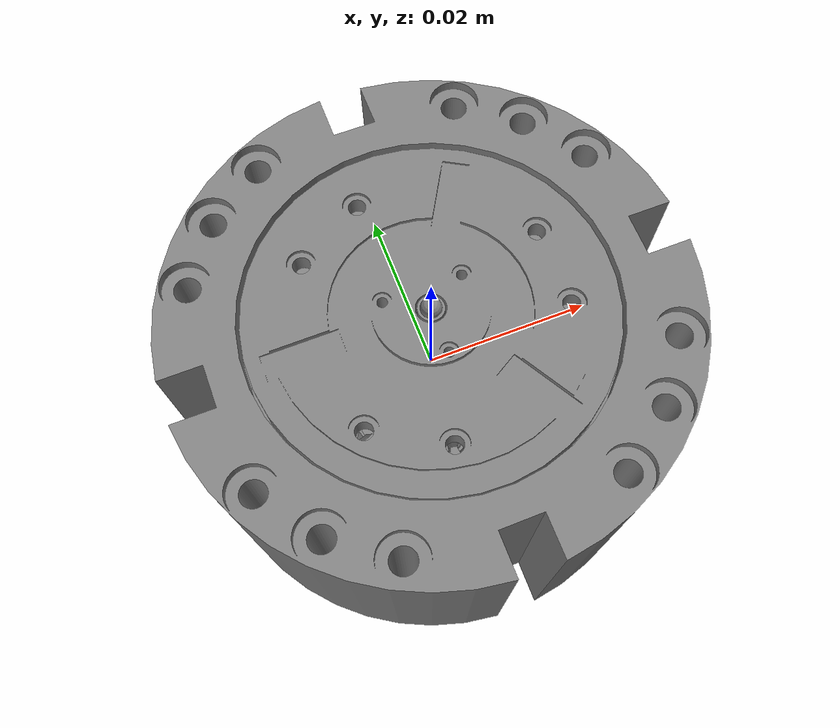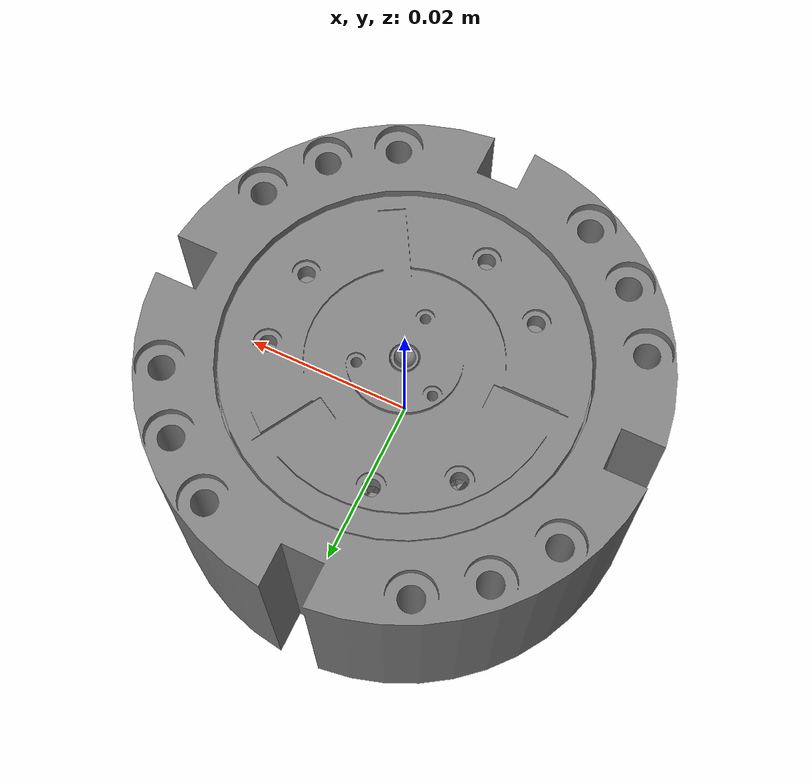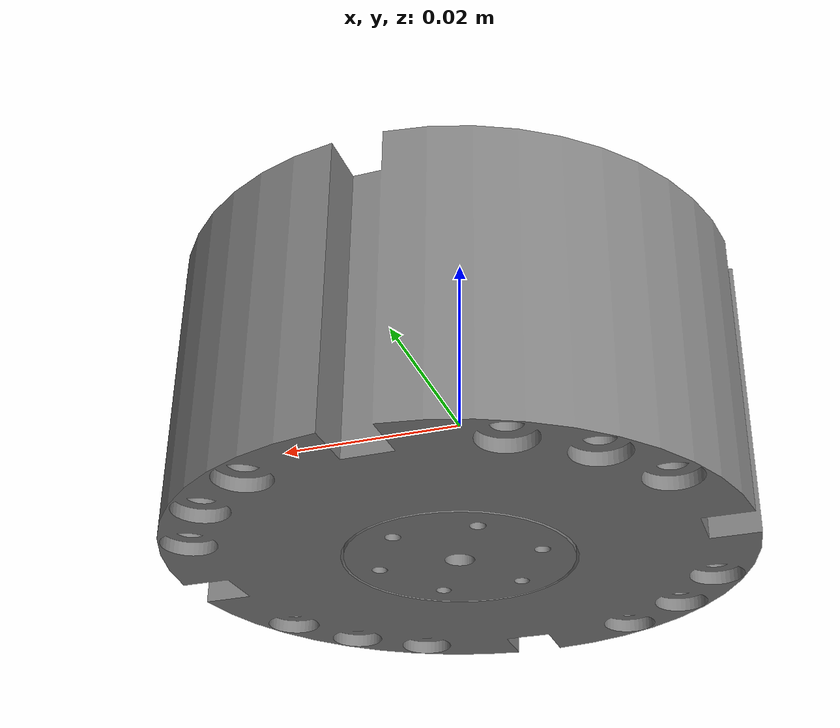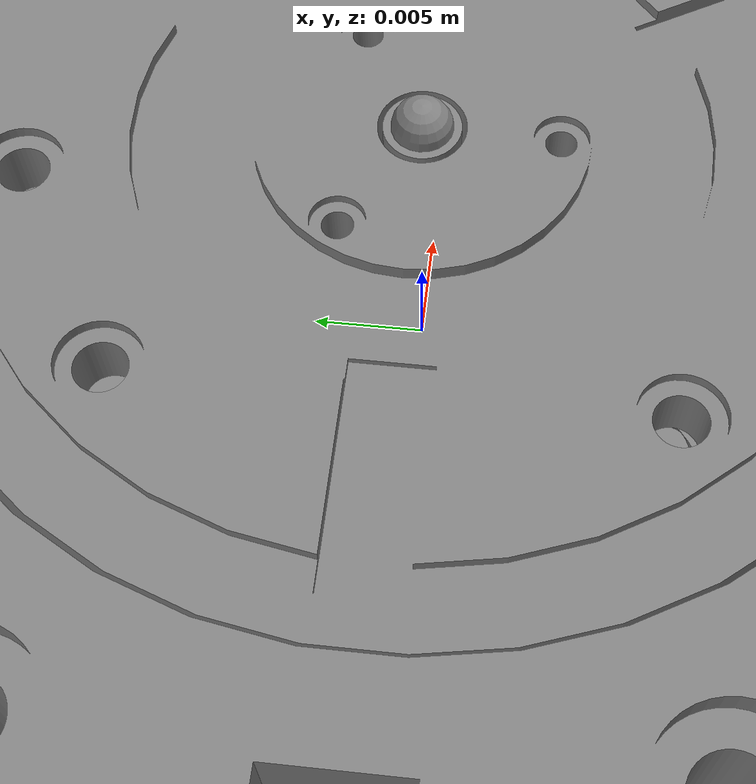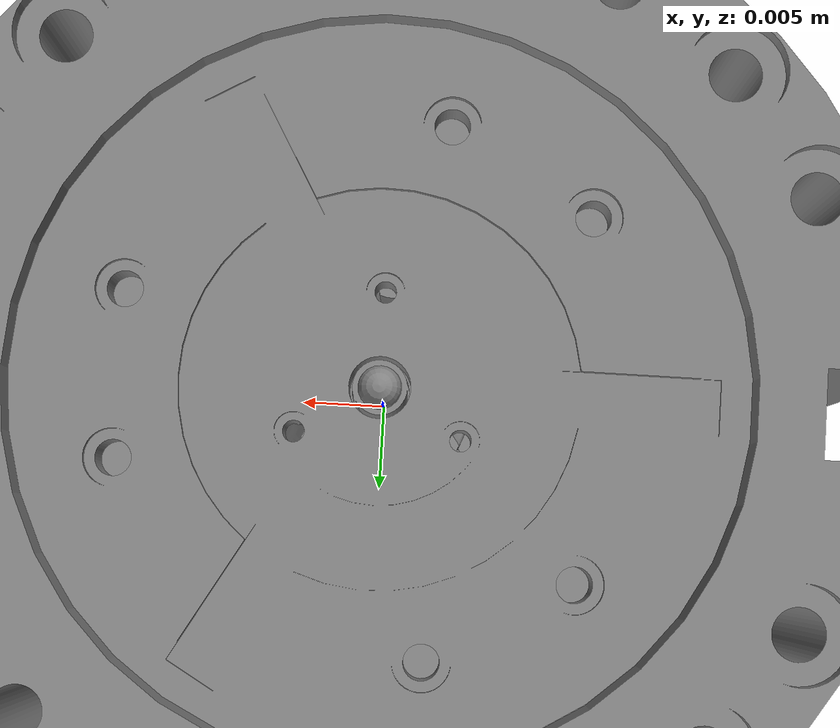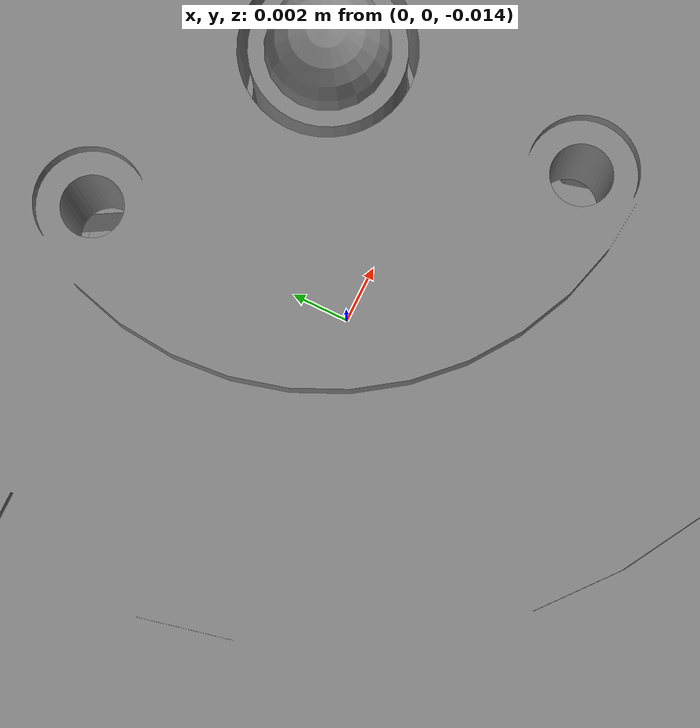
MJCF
<?xml version='1.0' encoding='utf-8'?>
<mujoco model="compact_two_stage_planetary_reducer">
  <compiler angle="radian" coordinate="local" />
  <option gravity="0 0 -9.81" />
  <asset>
    <mesh name="mesh_input_flange" file="meshes/mesh_input_flange.obj" scale="0.001 0.001 0.001" />
    <mesh name="mesh_input_shaft" file="meshes/mesh_input_shaft.obj" scale="0.001 0.001 0.001" />
    <mesh name="mesh_micro_radial_ball_bearing_ball" file="meshes/mesh_micro_radial_ball_bearing_ball.obj" scale="0.001 0.001 0.001" />
    <mesh name="mesh_micro_radial_ball_bearing_inner_ring" file="meshes/mesh_micro_radial_ball_bearing_inner_ring.obj" scale="0.001 0.001 0.001" />
    <mesh name="mesh_micro_radial_ball_bearing_outer_ring" file="meshes/mesh_micro_radial_ball_bearing_outer_ring.obj" scale="0.001 0.001 0.001" />
    <mesh name="mesh_output_flange" file="meshes/mesh_output_flange.obj" scale="0.001 0.001 0.001" />
    <mesh name="mesh_reducer_housing" file="meshes/mesh_reducer_housing.obj" scale="0.001 0.001 0.001" />
    <mesh name="mesh_stage1_carrier" file="meshes/mesh_stage1_carrier.obj" scale="0.001 0.001 0.001" />
    <mesh name="mesh_stage1_planet_gear" file="meshes/mesh_stage1_planet_gear.obj" scale="0.001 0.001 0.001" />
    <mesh name="mesh_stage1_ring_gear" file="meshes/mesh_stage1_ring_gear.obj" scale="0.001 0.001 0.001" />
    <mesh name="mesh_stage1_sun_gear" file="meshes/mesh_stage1_sun_gear.obj" scale="0.001 0.001 0.001" />
    <mesh name="mesh_stage2_carrier" file="meshes/mesh_stage2_carrier.obj" scale="0.001 0.001 0.001" />
    <mesh name="mesh_stage2_planet_gear" file="meshes/mesh_stage2_planet_gear.obj" scale="0.001 0.001 0.001" />
    <mesh name="mesh_stage2_ring_gear" file="meshes/mesh_stage2_ring_gear.obj" scale="0.001 0.001 0.001" />
    <mesh name="mesh_stage2_sun_gear" file="meshes/mesh_stage2_sun_gear.obj" scale="0.001 0.001 0.001" />
  </asset>
  <worldbody>
    <geom name="housing" type="mesh" mesh="mesh_reducer_housing" density="2700" contype="1" conaffinity="1" pos="0 0 0" quat="1 0 0 0" />
    <geom name="geom_node_compact_two_stage_planetary_reducer_input_bearing_ball_00_86e37e20652e" type="mesh" mesh="mesh_micro_radial_ball_bearing_ball" density="7850" contype="1" conaffinity="1" pos="0.00245 0 -0.011" quat="1 0 0 0" />
    <geom name="geom_node_compact_two_stage_planetary_reducer_input_bearing_ball_01_4b1df2922b9e" type="mesh" mesh="mesh_micro_radial_ball_bearing_ball" density="7850" contype="1" conaffinity="1" pos="0.001732411614 0.001732411614 -0.011" quat="0.923879532511 0 0 0.382683432365" />
    <geom name="geom_node_compact_two_stage_planetary_reducer_input_bearing_ball_02_f320a17354e4" type="mesh" mesh="mesh_micro_radial_ball_bearing_ball" density="7850" contype="1" conaffinity="1" pos="0 0.00245 -0.011" quat="0.707106781187 0 0 0.707106781187" />
    <geom name="geom_node_compact_two_stage_planetary_reducer_input_bearing_ball_03_f97690887b79" type="mesh" mesh="mesh_micro_radial_ball_bearing_ball" density="7850" contype="1" conaffinity="1" pos="-0.001732411614 0.001732411614 -0.011" quat="0.382683432365 0 0 0.923879532511" />
    <geom name="geom_node_compact_two_stage_planetary_reducer_input_bearing_ball_04_f78e514c71f5" type="mesh" mesh="mesh_micro_radial_ball_bearing_ball" density="7850" contype="1" conaffinity="1" pos="-0.00245 0 -0.011" quat="0 0 0 1" />
    <geom name="geom_node_compact_two_stage_planetary_reducer_input_bearing_ball_05_9115a2f93885" type="mesh" mesh="mesh_micro_radial_ball_bearing_ball" density="7850" contype="1" conaffinity="1" pos="-0.001732411614 -0.001732411614 -0.011" quat="-0.382683432365 0 0 0.923879532511" />
    <geom name="geom_node_compact_two_stage_planetary_reducer_input_bearing_ball_06_2d98b9263ede" type="mesh" mesh="mesh_micro_radial_ball_bearing_ball" density="7850" contype="1" conaffinity="1" pos="0 -0.00245 -0.011" quat="0.707106781187 0 -0 -0.707106781187" />
    <geom name="geom_node_compact_two_stage_planetary_reducer_input_bearing_ball_07_d16fdc192c22" type="mesh" mesh="mesh_micro_radial_ball_bearing_ball" density="7850" contype="1" conaffinity="1" pos="0.001732411614 -0.001732411614 -0.011" quat="0.923879532511 0 -0 -0.382683432365" />
    <geom name="geom_node_compact_two_stage_planetary_reducer_input_bearing_outer_ring_55722aebc9a4" type="mesh" mesh="mesh_micro_radial_ball_bearing_outer_ring" density="7850" contype="1" conaffinity="1" pos="0 0 -0.011" quat="1 0 0 0" />
    <geom name="geom_node_compact_two_stage_planetary_reducer_intermediate_bearing_ball_00_c251a80b382b" type="mesh" mesh="mesh_micro_radial_ball_bearing_ball" density="7850" contype="1" conaffinity="1" pos="0.00245 0 0" quat="1 0 0 0" />
    <geom name="geom_node_compact_two_stage_planetary_reducer_intermediate_bearing_ball_01_ac8ca225146b" type="mesh" mesh="mesh_micro_radial_ball_bearing_ball" density="7850" contype="1" conaffinity="1" pos="0.001732411614 0.001732411614 0" quat="0.923879532511 0 0 0.382683432365" />
    <geom name="geom_node_compact_two_stage_planetary_reducer_intermediate_bearing_ball_02_a78237ec9e0b" type="mesh" mesh="mesh_micro_radial_ball_bearing_ball" density="7850" contype="1" conaffinity="1" pos="0 0.00245 0" quat="0.707106781187 0 0 0.707106781187" />
    <geom name="geom_node_compact_two_stage_planetary_reducer_intermediate_bearing_ball_03_5bc8f384e6e0" type="mesh" mesh="mesh_micro_radial_ball_bearing_ball" density="7850" contype="1" conaffinity="1" pos="-0.001732411614 0.001732411614 0" quat="0.382683432365 0 0 0.923879532511" />
    <geom name="geom_node_compact_two_stage_planetary_reducer_intermediate_bearing_ball_04_9c74e1e7070e" type="mesh" mesh="mesh_micro_radial_ball_bearing_ball" density="7850" contype="1" conaffinity="1" pos="-0.00245 0 0" quat="0 0 0 1" />
    <geom name="geom_node_compact_two_stage_planetary_reducer_intermediate_bearing_ball_05_f890b1b8792a" type="mesh" mesh="mesh_micro_radial_ball_bearing_ball" density="7850" contype="1" conaffinity="1" pos="-0.001732411614 -0.001732411614 0" quat="-0.382683432365 0 0 0.923879532511" />
    <geom name="geom_node_compact_two_stage_planetary_reducer_intermediate_bearing_ball_06_0da2600896d3" type="mesh" mesh="mesh_micro_radial_ball_bearing_ball" density="7850" contype="1" conaffinity="1" pos="0 -0.00245 0" quat="0.707106781187 0 -0 -0.707106781187" />
    <geom name="geom_node_compact_two_stage_planetary_reducer_intermediate_bearing_ball_07_ccf1727b51ea" type="mesh" mesh="mesh_micro_radial_ball_bearing_ball" density="7850" contype="1" conaffinity="1" pos="0.001732411614 -0.001732411614 0" quat="0.923879532511 0 -0 -0.382683432365" />
    <geom name="geom_node_compact_two_stage_planetary_reducer_intermediate_bearing_outer_ring_195f28a3b7a9" type="mesh" mesh="mesh_micro_radial_ball_bearing_outer_ring" density="7850" contype="1" conaffinity="1" pos="0 0 0" quat="1 0 0 0" />
    <geom name="geom_node_compact_two_stage_planetary_reducer_output_bearing_ball_00_38574efa6805" type="mesh" mesh="mesh_micro_radial_ball_bearing_ball" density="7850" contype="1" conaffinity="1" pos="0.00245 0 0.0108" quat="1 0 0 0" />
    <geom name="geom_node_compact_two_stage_planetary_reducer_output_bearing_ball_01_e5e2aaac3884" type="mesh" mesh="mesh_micro_radial_ball_bearing_ball" density="7850" contype="1" conaffinity="1" pos="0.001732411614 0.001732411614 0.0108" quat="0.923879532511 0 0 0.382683432365" />
    <geom name="geom_node_compact_two_stage_planetary_reducer_output_bearing_ball_02_ce8bedff7ab0" type="mesh" mesh="mesh_micro_radial_ball_bearing_ball" density="7850" contype="1" conaffinity="1" pos="0 0.00245 0.0108" quat="0.707106781187 0 0 0.707106781187" />
    <geom name="geom_node_compact_two_stage_planetary_reducer_output_bearing_ball_03_1f2f4602f8f5" type="mesh" mesh="mesh_micro_radial_ball_bearing_ball" density="7850" contype="1" conaffinity="1" pos="-0.001732411614 0.001732411614 0.0108" quat="0.382683432365 0 0 0.923879532511" />
    <geom name="geom_node_compact_two_stage_planetary_reducer_output_bearing_ball_04_1304d06166d0" type="mesh" mesh="mesh_micro_radial_ball_bearing_ball" density="7850" contype="1" conaffinity="1" pos="-0.00245 0 0.0108" quat="0 0 0 1" />
    <geom name="geom_node_compact_two_stage_planetary_reducer_output_bearing_ball_05_2d284e68e25b" type="mesh" mesh="mesh_micro_radial_ball_bearing_ball" density="7850" contype="1" conaffinity="1" pos="-0.001732411614 -0.001732411614 0.0108" quat="-0.382683432365 0 0 0.923879532511" />
    <geom name="geom_node_compact_two_stage_planetary_reducer_output_bearing_ball_06_453f2c665d50" type="mesh" mesh="mesh_micro_radial_ball_bearing_ball" density="7850" contype="1" conaffinity="1" pos="0 -0.00245 0.0108" quat="0.707106781187 0 -0 -0.707106781187" />
    <geom name="geom_node_compact_two_stage_planetary_reducer_output_bearing_ball_07_a3e972dcb518" type="mesh" mesh="mesh_micro_radial_ball_bearing_ball" density="7850" contype="1" conaffinity="1" pos="0.001732411614 -0.001732411614 0.0108" quat="0.923879532511 0 -0 -0.382683432365" />
    <geom name="geom_node_compact_two_stage_planetary_reducer_output_bearing_outer_ring_a405c9892201" type="mesh" mesh="mesh_micro_radial_ball_bearing_outer_ring" density="7850" contype="1" conaffinity="1" pos="0 0 0.0108" quat="1 0 0 0" />
    <geom name="stage1_ring" type="mesh" mesh="mesh_stage1_ring_gear" density="7850" contype="1" conaffinity="1" pos="0 0 -0.0084" quat="1 0 0 0" />
    <geom name="stage2_ring" type="mesh" mesh="mesh_stage2_ring_gear" density="7850" contype="1" conaffinity="1" pos="0 0 0.0012" quat="1 0 0 0" />
    <body name="body_input_shaft" pos="0 0 -0.011" quat="1 0 0 0">
      <joint name="joint_joint_compact_two_stage_planetary_reducer_input_shaft_revolute_660c7977fc43" type="hinge" pos="0 0 0.0072" axis="0 0 1" />
      <geom name="geom_node_compact_two_stage_planetary_reducer_input_bearing_inner_ring_087ce5d313cb" type="mesh" mesh="mesh_micro_radial_ball_bearing_inner_ring" density="7850" contype="1" conaffinity="1" pos="0 0 0" quat="1 0 0 0" />
      <geom name="input_flange" type="mesh" mesh="mesh_input_flange" density="7850" contype="1" conaffinity="1" pos="0 0 0.011" quat="1 0 0 0" />
      <geom name="input_shaft" type="mesh" mesh="mesh_input_shaft" density="7850" contype="1" conaffinity="1" pos="0 0 0.011" quat="1 0 0 0" />
      <geom name="stage1_sun" type="mesh" mesh="mesh_stage1_sun_gear" density="7850" contype="1" conaffinity="1" pos="0 0 0.0026" quat="1 0 0 0" />
      <site name="input_motor_axis" size="0.0012" type="sphere" pos="0 0 -0.001" quat="1 0 0 0" />
      <site name="mesh_joint_compact_two_stage_planetary_reducer_stage1_sun_planet_1_external_mesh_c2590a0bfd48" size="0.0008" type="sphere" pos="0 0 0.0072" quat="1 0 0 0" />
      <site name="mesh_joint_compact_two_stage_planetary_reducer_stage1_sun_planet_2_external_mesh_ce468f5bcf1e" size="0.0008" type="sphere" pos="0 0 0.0072" quat="1 0 0 0" />
      <site name="mesh_joint_compact_two_stage_planetary_reducer_stage1_sun_planet_3_external_mesh_6177e8a68f11" size="0.0008" type="sphere" pos="0 0 0.0072" quat="1 0 0 0" />
    </body>
    <body name="body_stage1_carrier" pos="0 0 0" quat="1 0 0 0">
      <joint name="joint_joint_compact_two_stage_planetary_reducer_stage1_carrier_revolute_38f6fa1fc4c8" type="hinge" pos="0 0 0.0058" axis="0 0 1" />
      <geom name="geom_node_compact_two_stage_planetary_reducer_intermediate_bearing_inner_ring_b13817ee5b57" type="mesh" mesh="mesh_micro_radial_ball_bearing_inner_ring" density="7850" contype="1" conaffinity="1" pos="0 0 0" quat="1 0 0 0" />
      <geom name="stage1_carrier" type="mesh" mesh="mesh_stage1_carrier" density="2810" contype="1" conaffinity="1" pos="0 0 0" quat="1 0 0 0" />
      <geom name="geom_node_compact_two_stage_planetary_reducer_stage1_planet_bearing_1_inner_ring_9b09d3fcf88c" type="mesh" mesh="mesh_micro_radial_ball_bearing_inner_ring" density="7850" contype="1" conaffinity="1" pos="0.01125 0 -0.0061" quat="1 0 0 0" />
      <geom name="geom_node_compact_two_stage_planetary_reducer_stage1_planet_bearing_2_inner_ring_0d808cc54f91" type="mesh" mesh="mesh_micro_radial_ball_bearing_inner_ring" density="7850" contype="1" conaffinity="1" pos="-0.005625 0.009742785793 -0.0061" quat="1 0 0 0" />
      <geom name="geom_node_compact_two_stage_planetary_reducer_stage1_planet_bearing_3_inner_ring_512d5cd7ce67" type="mesh" mesh="mesh_micro_radial_ball_bearing_inner_ring" density="7850" contype="1" conaffinity="1" pos="-0.005625 -0.009742785793 -0.0061" quat="1 0 0 0" />
      <geom name="stage2_sun" type="mesh" mesh="mesh_stage2_sun_gear" density="7850" contype="1" conaffinity="1" pos="0 0 0.0012" quat="1 0 0 0" />
      <body name="body_stage1_planet_1" pos="0.01125 0 -0.0084" quat="0.0871557429121 0 0 0.996194698077">
        <joint name="joint_joint_compact_two_stage_planetary_reducer_stage1_planet_1_revolute_25655304f7b0" type="hinge" pos="0 0 0.0046" axis="0 0 1" />
        <geom name="stage1_planet_1" type="mesh" mesh="mesh_stage1_planet_gear" density="7850" contype="1" conaffinity="1" pos="0 0 0" quat="1 0 0 0" />
        <geom name="geom_node_compact_two_stage_planetary_reducer_stage1_planet_bearing_1_ball_00_013d58cf59f7" type="mesh" mesh="mesh_micro_radial_ball_bearing_ball" density="7850" contype="1" conaffinity="1" pos="-0.00241277899474 -0.000425438036081 0.0023" quat="-0.0871557429121 0 0 0.996194698077" />
        <geom name="geom_node_compact_two_stage_planetary_reducer_stage1_planet_bearing_1_ball_01_3c65a06d0d4e" type="mesh" mesh="mesh_micro_radial_ball_bearing_ball" density="7850" contype="1" conaffinity="1" pos="-0.00140526226847 -0.00200692250908 0.0023" quat="-0.461748613381 0 0 0.887010833102" />
        <geom name="geom_node_compact_two_stage_planetary_reducer_stage1_planet_bearing_1_ball_02_a472a9395b0a" type="mesh" mesh="mesh_micro_radial_ball_bearing_ball" density="7850" contype="1" conaffinity="1" pos="0.000425438036081 -0.00241277899474 0.0023" quat="0.766044443225 0 -0 -0.64278760956" />
        <geom name="geom_node_compact_two_stage_planetary_reducer_stage1_planet_bearing_1_ball_03_f38d2ad9f88f" type="mesh" mesh="mesh_micro_radial_ball_bearing_ball" density="7850" contype="1" conaffinity="1" pos="0.00200692250908 -0.00140526226847 0.0023" quat="0.953716950798 0 -0 -0.300705799347" />
        <geom name="geom_node_compact_two_stage_planetary_reducer_stage1_planet_bearing_1_ball_04_29f76441422a" type="mesh" mesh="mesh_micro_radial_ball_bearing_ball" density="7850" contype="1" conaffinity="1" pos="0.00241277899474 0.000425438036081 0.0023" quat="0.996194698077 0 0 0.0871557429121" />
        <geom name="geom_node_compact_two_stage_planetary_reducer_stage1_planet_bearing_1_ball_05_a2c1f4f408b3" type="mesh" mesh="mesh_micro_radial_ball_bearing_ball" density="7850" contype="1" conaffinity="1" pos="0.00140526226847 0.00200692250908 0.0023" quat="0.887010833102 0 0 0.461748613381" />
        <geom name="geom_node_compact_two_stage_planetary_reducer_stage1_planet_bearing_1_ball_06_d14bdf35e507" type="mesh" mesh="mesh_micro_radial_ball_bearing_ball" density="7850" contype="1" conaffinity="1" pos="-0.000425438036081 0.00241277899474 0.0023" quat="0.64278760956 0 0 0.766044443225" />
        <geom name="geom_node_compact_two_stage_planetary_reducer_stage1_planet_bearing_1_ball_07_c44ba60b3cf8" type="mesh" mesh="mesh_micro_radial_ball_bearing_ball" density="7850" contype="1" conaffinity="1" pos="-0.00200692250908 0.00140526226847 0.0023" quat="0.300705799347 0 0 0.953716950798" />
        <geom name="geom_node_compact_two_stage_planetary_reducer_stage1_planet_bearing_1_outer_ring_aef2deb4090d" type="mesh" mesh="mesh_micro_radial_ball_bearing_outer_ring" density="7850" contype="1" conaffinity="1" pos="0 0 0.0023" quat="-0.0871557429121 0 0 0.996194698077" />
        <site name="mesh_joint_compact_two_stage_planetary_reducer_stage1_ring_planet_1_internal_mes_373d24c38beb" size="0.0008" type="sphere" pos="0 0 0.0046" quat="1 0 0 0" />
        <site name="mesh_joint_compact_two_stage_planetary_reducer_stage1_sun_planet_1_external_mesh_0d82b285bb3d" size="0.0008" type="sphere" pos="0 0 0.0046" quat="1 0 0 0" />
      </body>
      <body name="body_stage1_planet_2" pos="-0.005625 0.009742785793 -0.0084" quat="0.81915204418 0 -0 -0.573576436506">
        <joint name="joint_joint_compact_two_stage_planetary_reducer_stage1_planet_2_revolute_225f62621f28" type="hinge" pos="0 0 0.0046" axis="0 0 1" />
        <geom name="stage1_planet_2" type="mesh" mesh="mesh_stage1_planet_gear" density="7850" contype="1" conaffinity="1" pos="0 0 0" quat="1 0 0 0" />
        <geom name="geom_node_compact_two_stage_planetary_reducer_stage1_planet_bearing_2_ball_00_243ffa162ee9" type="mesh" mesh="mesh_micro_radial_ball_bearing_ball" density="7850" contype="1" conaffinity="1" pos="0.000837949350275 0.00230224692124 0.0023" quat="0.81915204418 0 0 0.573576436506" />
        <geom name="geom_node_compact_two_stage_planetary_reducer_stage1_planet_bearing_2_ball_01_8513299880ea" type="mesh" mesh="mesh_micro_radial_ball_bearing_ball" density="7850" contype="1" conaffinity="1" pos="-0.00103541474216 0.00222045407797 0.0023" quat="0.537299608187 0 0 0.843391445915" />
        <geom name="geom_node_compact_two_stage_planetary_reducer_stage1_planet_bearing_2_ball_02_d414daf8a285" type="mesh" mesh="mesh_micro_radial_ball_bearing_ball" density="7850" contype="1" conaffinity="1" pos="-0.00230224692124 0.000837949350275 0.0023" quat="0.17364817748 0 0 0.984807753045" />
        <geom name="geom_node_compact_two_stage_planetary_reducer_stage1_planet_bearing_2_ball_03_681ffb43723c" type="mesh" mesh="mesh_micro_radial_ball_bearing_ball" density="7850" contype="1" conaffinity="1" pos="-0.00222045407797 -0.00103541474216 0.0023" quat="-0.216439614123 0 0 0.976296007079" />
        <geom name="geom_node_compact_two_stage_planetary_reducer_stage1_planet_bearing_2_ball_04_7f87d16b5ceb" type="mesh" mesh="mesh_micro_radial_ball_bearing_ball" density="7850" contype="1" conaffinity="1" pos="-0.000837949350275 -0.00230224692124 0.0023" quat="0.573576436506 0 0 -0.81915204418" />
        <geom name="geom_node_compact_two_stage_planetary_reducer_stage1_planet_bearing_2_ball_05_88e0ccdd1ad7" type="mesh" mesh="mesh_micro_radial_ball_bearing_ball" density="7850" contype="1" conaffinity="1" pos="0.00103541474216 -0.00222045407797 0.0023" quat="0.843391445915 0 -0 -0.537299608187" />
        <geom name="geom_node_compact_two_stage_planetary_reducer_stage1_planet_bearing_2_ball_06_581312af49c6" type="mesh" mesh="mesh_micro_radial_ball_bearing_ball" density="7850" contype="1" conaffinity="1" pos="0.00230224692124 -0.000837949350275 0.0023" quat="0.984807753045 0 -0 -0.17364817748" />
        <geom name="geom_node_compact_two_stage_planetary_reducer_stage1_planet_bearing_2_ball_07_aeece84fd10b" type="mesh" mesh="mesh_micro_radial_ball_bearing_ball" density="7850" contype="1" conaffinity="1" pos="0.00222045407797 0.00103541474216 0.0023" quat="0.976296007079 0 0 0.216439614123" />
        <geom name="geom_node_compact_two_stage_planetary_reducer_stage1_planet_bearing_2_outer_ring_5f4019691873" type="mesh" mesh="mesh_micro_radial_ball_bearing_outer_ring" density="7850" contype="1" conaffinity="1" pos="0 0 0.0023" quat="0.81915204418 0 0 0.573576436506" />
        <site name="mesh_joint_compact_two_stage_planetary_reducer_stage1_ring_planet_2_internal_mes_fa35db898f60" size="0.0008" type="sphere" pos="0 0 0.0046" quat="1 0 0 0" />
        <site name="mesh_joint_compact_two_stage_planetary_reducer_stage1_sun_planet_2_external_mesh_afae7acdcf59" size="0.0008" type="sphere" pos="0 0 0.0046" quat="1 0 0 0" />
      </body>
      <body name="body_stage1_planet_3" pos="-0.005625 -0.009742785793 -0.0084" quat="0.906307787104 0 0 0.422618261597">
        <joint name="joint_joint_compact_two_stage_planetary_reducer_stage1_planet_3_revolute_beb8ce1563d3" type="hinge" pos="-8.881784197e-19 0 0.0046" axis="0 0 1" />
        <geom name="stage1_planet_3" type="mesh" mesh="mesh_stage1_planet_gear" density="7850" contype="1" conaffinity="1" pos="-8.881784197e-19 0 0" quat="1 0 0 0" />
        <geom name="geom_node_compact_two_stage_planetary_reducer_stage1_planet_bearing_3_ball_00_a26b7e9c985a" type="mesh" mesh="mesh_micro_radial_ball_bearing_ball" density="7850" contype="1" conaffinity="1" pos="0.00157482964433 -0.00187680888514 0.0023" quat="0.906307787104 0 -0 -0.422618261597" />
        <geom name="geom_node_compact_two_stage_planetary_reducer_stage1_planet_bearing_3_ball_01_7497f46082b8" type="mesh" mesh="mesh_micro_radial_ball_bearing_ball" density="7850" contype="1" conaffinity="1" pos="0.00244067701052 -0.00021353156897 0.0023" quat="0.999048221589 0 -0 -0.0436193872072" />
        <geom name="geom_node_compact_two_stage_planetary_reducer_stage1_planet_bearing_3_ball_02_c3bbbc94d1cb" type="mesh" mesh="mesh_micro_radial_ball_bearing_ball" density="7850" contype="1" conaffinity="1" pos="0.00187680888514 0.00157482964433 0.0023" quat="0.939692620732 0 0 0.342020143474" />
        <geom name="geom_node_compact_two_stage_planetary_reducer_stage1_planet_bearing_3_ball_03_c96dc13e02b1" type="mesh" mesh="mesh_micro_radial_ball_bearing_ball" density="7850" contype="1" conaffinity="1" pos="0.00021353156897 0.00244067701052 0.0023" quat="0.737277336703 0 0 0.675590207732" />
        <geom name="geom_node_compact_two_stage_planetary_reducer_stage1_planet_bearing_3_ball_04_026e9f380820" type="mesh" mesh="mesh_micro_radial_ball_bearing_ball" density="7850" contype="1" conaffinity="1" pos="-0.00157482964433 0.00187680888514 0.0023" quat="0.422618261597 0 0 0.906307787104" />
        <geom name="geom_node_compact_two_stage_planetary_reducer_stage1_planet_bearing_3_ball_05_884d44e114b5" type="mesh" mesh="mesh_micro_radial_ball_bearing_ball" density="7850" contype="1" conaffinity="1" pos="-0.00244067701052 0.00021353156897 0.0023" quat="0.0436193872072 0 0 0.999048221589" />
        <geom name="geom_node_compact_two_stage_planetary_reducer_stage1_planet_bearing_3_ball_06_fe5ae37b2495" type="mesh" mesh="mesh_micro_radial_ball_bearing_ball" density="7850" contype="1" conaffinity="1" pos="-0.00187680888514 -0.00157482964433 0.0023" quat="-0.342020143474 0 0 0.939692620732" />
        <geom name="geom_node_compact_two_stage_planetary_reducer_stage1_planet_bearing_3_ball_07_dffb3d35ee62" type="mesh" mesh="mesh_micro_radial_ball_bearing_ball" density="7850" contype="1" conaffinity="1" pos="-0.00021353156897 -0.00244067701052 0.0023" quat="0.675590207732 0 0 -0.737277336703" />
        <geom name="geom_node_compact_two_stage_planetary_reducer_stage1_planet_bearing_3_outer_ring_94de8d533e6d" type="mesh" mesh="mesh_micro_radial_ball_bearing_outer_ring" density="7850" contype="1" conaffinity="1" pos="-8.881784197e-19 0 0.0023" quat="0.906307787104 0 -0 -0.422618261597" />
        <site name="mesh_joint_compact_two_stage_planetary_reducer_stage1_ring_planet_3_internal_mes_88a324ab3181" size="0.0008" type="sphere" pos="-8.881784197e-19 0 0.0046" quat="1 0 0 0" />
        <site name="mesh_joint_compact_two_stage_planetary_reducer_stage1_sun_planet_3_external_mesh_adb7d31cf716" size="0.0008" type="sphere" pos="-8.881784197e-19 0 0.0046" quat="1 0 0 0" />
      </body>
      <site name="mesh_joint_compact_two_stage_planetary_reducer_stage2_sun_planet_1_external_mesh_3588c1ce3483" size="0.0008" type="sphere" pos="0 0 0.0058" quat="1 0 0 0" />
      <site name="mesh_joint_compact_two_stage_planetary_reducer_stage2_sun_planet_2_external_mesh_65f92bbb6e4e" size="0.0008" type="sphere" pos="0 0 0.0058" quat="1 0 0 0" />
      <site name="mesh_joint_compact_two_stage_planetary_reducer_stage2_sun_planet_3_external_mesh_893ce928b0c6" size="0.0008" type="sphere" pos="0 0 0.0058" quat="1 0 0 0" />
    </body>
    <body name="body_stage2_carrier" pos="0 0 0.0108" quat="1 0 0 0">
      <joint name="joint_joint_compact_two_stage_planetary_reducer_stage2_carrier_revolute_b5eba2d4d17f" type="hinge" pos="0 0 0.0042" axis="0 0 1" />
      <geom name="geom_node_compact_two_stage_planetary_reducer_output_bearing_inner_ring_2199ab39e8d6" type="mesh" mesh="mesh_micro_radial_ball_bearing_inner_ring" density="7850" contype="1" conaffinity="1" pos="0 0 0" quat="1 0 0 0" />
      <geom name="output_flange" type="mesh" mesh="mesh_output_flange" density="7850" contype="1" conaffinity="1" pos="0 0 -0.0108" quat="1 0 0 0" />
      <geom name="stage2_carrier" type="mesh" mesh="mesh_stage2_carrier" density="2810" contype="1" conaffinity="1" pos="0 0 -0.0108" quat="1 0 0 0" />
      <geom name="geom_node_compact_two_stage_planetary_reducer_stage2_planet_bearing_1_inner_ring_9193d0f58388" type="mesh" mesh="mesh_micro_radial_ball_bearing_inner_ring" density="7850" contype="1" conaffinity="1" pos="0.009 0 -0.0073" quat="1 0 0 0" />
      <geom name="geom_node_compact_two_stage_planetary_reducer_stage2_planet_bearing_2_inner_ring_8a2a948f8d02" type="mesh" mesh="mesh_micro_radial_ball_bearing_inner_ring" density="7850" contype="1" conaffinity="1" pos="-0.0045 0.007794228634 -0.0073" quat="1 0 0 0" />
      <geom name="geom_node_compact_two_stage_planetary_reducer_stage2_planet_bearing_3_inner_ring_a53af78bce97" type="mesh" mesh="mesh_micro_radial_ball_bearing_inner_ring" density="7850" contype="1" conaffinity="1" pos="-0.0045 -0.007794228634 -0.0073" quat="1 0 0 0" />
      <body name="body_stage2_planet_1" pos="0.009 0 -0.0096" quat="0.130526192208 0 0 0.991444861375">
        <joint name="joint_joint_compact_two_stage_planetary_reducer_stage2_planet_1_revolute_c650c1f4cc1a" type="hinge" pos="0 0 0.0046" axis="0 0 1" />
        <geom name="stage2_planet_1" type="mesh" mesh="mesh_stage2_planet_gear" density="7850" contype="1" conaffinity="1" pos="0 0 0" quat="1 0 0 0" />
        <geom name="geom_node_compact_two_stage_planetary_reducer_stage2_planet_bearing_1_ball_00_d3de108c554f" type="mesh" mesh="mesh_micro_radial_ball_bearing_ball" density="7850" contype="1" conaffinity="1" pos="-0.00236651827442 -0.000634106660444 0.0023" quat="-0.130526192208 0 0 0.991444861375" />
        <geom name="geom_node_compact_two_stage_planetary_reducer_stage2_planet_bearing_1_ball_01_296d997078a4" type="mesh" mesh="mesh_micro_radial_ball_bearing_ball" density="7850" contype="1" conaffinity="1" pos="-0.00122500000012 -0.00212176223936 0.0023" quat="-0.49999999999 0 0 0.86602540379" />
        <geom name="geom_node_compact_two_stage_planetary_reducer_stage2_planet_bearing_1_ball_02_bfeef2e5bc79" type="mesh" mesh="mesh_micro_radial_ball_bearing_ball" density="7850" contype="1" conaffinity="1" pos="0.000634106660444 -0.00236651827442 0.0023" quat="0.793353340284 0 -0 -0.608761429018" />
        <geom name="geom_node_compact_two_stage_planetary_reducer_stage2_planet_bearing_1_ball_03_b99d832d2982" type="mesh" mesh="mesh_micro_radial_ball_bearing_ball" density="7850" contype="1" conaffinity="1" pos="0.00212176223936 -0.00122500000012 0.0023" quat="0.965925826286 0 -0 -0.258819045114" />
        <geom name="geom_node_compact_two_stage_planetary_reducer_stage2_planet_bearing_1_ball_04_fe43d2d8b569" type="mesh" mesh="mesh_micro_radial_ball_bearing_ball" density="7850" contype="1" conaffinity="1" pos="0.00236651827442 0.000634106660444 0.0023" quat="0.991444861375 0 0 0.130526192208" />
        <geom name="geom_node_compact_two_stage_planetary_reducer_stage2_planet_bearing_1_ball_05_ba8833de116e" type="mesh" mesh="mesh_micro_radial_ball_bearing_ball" density="7850" contype="1" conaffinity="1" pos="0.00122500000012 0.00212176223936 0.0023" quat="0.86602540379 0 0 0.49999999999" />
        <geom name="geom_node_compact_two_stage_planetary_reducer_stage2_planet_bearing_1_ball_06_1d9f66bc4301" type="mesh" mesh="mesh_micro_radial_ball_bearing_ball" density="7850" contype="1" conaffinity="1" pos="-0.000634106660444 0.00236651827442 0.0023" quat="0.608761429018 0 0 0.793353340284" />
        <geom name="geom_node_compact_two_stage_planetary_reducer_stage2_planet_bearing_1_ball_07_8a9d64cce7cc" type="mesh" mesh="mesh_micro_radial_ball_bearing_ball" density="7850" contype="1" conaffinity="1" pos="-0.00212176223936 0.00122500000012 0.0023" quat="0.258819045114 0 0 0.965925826286" />
        <geom name="geom_node_compact_two_stage_planetary_reducer_stage2_planet_bearing_1_outer_ring_f2ab95b73345" type="mesh" mesh="mesh_micro_radial_ball_bearing_outer_ring" density="7850" contype="1" conaffinity="1" pos="0 0 0.0023" quat="-0.130526192208 0 0 0.991444861375" />
        <site name="mesh_joint_compact_two_stage_planetary_reducer_stage2_ring_planet_1_internal_mes_c13538d5a162" size="0.0008" type="sphere" pos="0 0 0.0046" quat="1 0 0 0" />
        <site name="mesh_joint_compact_two_stage_planetary_reducer_stage2_sun_planet_1_external_mesh_339eff3d8a29" size="0.0008" type="sphere" pos="0 0 0.0046" quat="1 0 0 0" />
      </body>
      <body name="body_stage2_planet_2" pos="-0.0045 0.007794228634 -0.0096" quat="0.793353340284 0 -0 -0.608761429018">
        <joint name="joint_joint_compact_two_stage_planetary_reducer_stage2_planet_2_revolute_2f83464e9782" type="hinge" pos="0 0 0.0046" axis="0 0 1" />
        <geom name="stage2_planet_2" type="mesh" mesh="mesh_stage2_planet_gear" density="7850" contype="1" conaffinity="1" pos="0 0 0" quat="1 0 0 0" />
        <geom name="geom_node_compact_two_stage_planetary_reducer_stage2_planet_bearing_2_ball_00_96d7c969d99e" type="mesh" mesh="mesh_micro_radial_ball_bearing_ball" density="7850" contype="1" conaffinity="1" pos="0.000634106660444 0.00236651827442 0.0023" quat="0.793353340284 0 0 0.608761429018" />
        <geom name="geom_node_compact_two_stage_planetary_reducer_stage2_planet_bearing_2_ball_01_0b51586a1ce5" type="mesh" mesh="mesh_micro_radial_ball_bearing_ball" density="7850" contype="1" conaffinity="1" pos="-0.00122500000012 0.00212176223936 0.0023" quat="0.49999999999 0 0 0.86602540379" />
        <geom name="geom_node_compact_two_stage_planetary_reducer_stage2_planet_bearing_2_ball_02_7b996941a69f" type="mesh" mesh="mesh_micro_radial_ball_bearing_ball" density="7850" contype="1" conaffinity="1" pos="-0.00236651827442 0.000634106660444 0.0023" quat="0.130526192208 0 0 0.991444861375" />
        <geom name="geom_node_compact_two_stage_planetary_reducer_stage2_planet_bearing_2_ball_03_e99cfa5359f8" type="mesh" mesh="mesh_micro_radial_ball_bearing_ball" density="7850" contype="1" conaffinity="1" pos="-0.00212176223936 -0.00122500000012 0.0023" quat="-0.258819045114 0 0 0.965925826286" />
        <geom name="geom_node_compact_two_stage_planetary_reducer_stage2_planet_bearing_2_ball_04_1b0918af1fd5" type="mesh" mesh="mesh_micro_radial_ball_bearing_ball" density="7850" contype="1" conaffinity="1" pos="-0.000634106660444 -0.00236651827442 0.0023" quat="0.608761429018 0 0 -0.793353340284" />
        <geom name="geom_node_compact_two_stage_planetary_reducer_stage2_planet_bearing_2_ball_05_ce0c33157890" type="mesh" mesh="mesh_micro_radial_ball_bearing_ball" density="7850" contype="1" conaffinity="1" pos="0.00122500000012 -0.00212176223936 0.0023" quat="0.86602540379 0 -0 -0.49999999999" />
        <geom name="geom_node_compact_two_stage_planetary_reducer_stage2_planet_bearing_2_ball_06_4ca32a3ecdd3" type="mesh" mesh="mesh_micro_radial_ball_bearing_ball" density="7850" contype="1" conaffinity="1" pos="0.00236651827442 -0.000634106660444 0.0023" quat="0.991444861375 0 -0 -0.130526192208" />
        <geom name="geom_node_compact_two_stage_planetary_reducer_stage2_planet_bearing_2_ball_07_5c1ce7c39f63" type="mesh" mesh="mesh_micro_radial_ball_bearing_ball" density="7850" contype="1" conaffinity="1" pos="0.00212176223936 0.00122500000012 0.0023" quat="0.965925826286 0 0 0.258819045114" />
        <geom name="geom_node_compact_two_stage_planetary_reducer_stage2_planet_bearing_2_outer_ring_f5c06fa17c5d" type="mesh" mesh="mesh_micro_radial_ball_bearing_outer_ring" density="7850" contype="1" conaffinity="1" pos="0 0 0.0023" quat="0.793353340284 0 0 0.608761429018" />
        <site name="mesh_joint_compact_two_stage_planetary_reducer_stage2_ring_planet_2_internal_mes_7f1b74f8d45d" size="0.0008" type="sphere" pos="0 0 0.0046" quat="1 0 0 0" />
        <site name="mesh_joint_compact_two_stage_planetary_reducer_stage2_sun_planet_2_external_mesh_50057c8f3985" size="0.0008" type="sphere" pos="0 0 0.0046" quat="1 0 0 0" />
      </body>
      <body name="body_stage2_planet_3" pos="-0.0045 -0.007794228634 -0.0096" quat="0.923879532511 0 0 0.382683432365">
        <joint name="joint_joint_compact_two_stage_planetary_reducer_stage2_planet_3_revolute_b470190f204d" type="hinge" pos="-8.881784197e-19 0 0.0046" axis="0 0 1" />
        <geom name="stage2_planet_3" type="mesh" mesh="mesh_stage2_planet_gear" density="7850" contype="1" conaffinity="1" pos="-8.881784197e-19 0 0" quat="1 0 0 0" />
        <geom name="geom_node_compact_two_stage_planetary_reducer_stage2_planet_bearing_3_ball_00_1c3352e7486c" type="mesh" mesh="mesh_micro_radial_ball_bearing_ball" density="7850" contype="1" conaffinity="1" pos="0.00173241161391 -0.00173241161391 0.0023" quat="0.923879532511 0 -0 -0.382683432365" />
        <geom name="geom_node_compact_two_stage_planetary_reducer_stage2_planet_bearing_3_ball_01_f456a79c26e0" type="mesh" mesh="mesh_micro_radial_ball_bearing_ball" density="7850" contype="1" conaffinity="1" pos="0.00245000000013 0 0.0023" quat="1 0 0 0" />
        <geom name="geom_node_compact_two_stage_planetary_reducer_stage2_planet_bearing_3_ball_02_56c7680e6b46" type="mesh" mesh="mesh_micro_radial_ball_bearing_ball" density="7850" contype="1" conaffinity="1" pos="0.00173241161391 0.00173241161391 0.0023" quat="0.923879532511 0 0 0.382683432365" />
        <geom name="geom_node_compact_two_stage_planetary_reducer_stage2_planet_bearing_3_ball_03_121b5885c0cc" type="mesh" mesh="mesh_micro_radial_ball_bearing_ball" density="7850" contype="1" conaffinity="1" pos="0 0.00245000000013 0.0023" quat="0.707106781187 0 0 0.707106781187" />
        <geom name="geom_node_compact_two_stage_planetary_reducer_stage2_planet_bearing_3_ball_04_1b50b8823d9d" type="mesh" mesh="mesh_micro_radial_ball_bearing_ball" density="7850" contype="1" conaffinity="1" pos="-0.00173241161391 0.00173241161391 0.0023" quat="0.382683432365 0 0 0.923879532511" />
        <geom name="geom_node_compact_two_stage_planetary_reducer_stage2_planet_bearing_3_ball_05_e5584f9cc6ee" type="mesh" mesh="mesh_micro_radial_ball_bearing_ball" density="7850" contype="1" conaffinity="1" pos="-0.00245000000013 0 0.0023" quat="0 0 0 1" />
        <geom name="geom_node_compact_two_stage_planetary_reducer_stage2_planet_bearing_3_ball_06_a73175c36e2d" type="mesh" mesh="mesh_micro_radial_ball_bearing_ball" density="7850" contype="1" conaffinity="1" pos="-0.00173241161391 -0.00173241161391 0.0023" quat="-0.382683432365 0 0 0.923879532511" />
        <geom name="geom_node_compact_two_stage_planetary_reducer_stage2_planet_bearing_3_ball_07_2a441c6089b7" type="mesh" mesh="mesh_micro_radial_ball_bearing_ball" density="7850" contype="1" conaffinity="1" pos="0 -0.00245000000013 0.0023" quat="0.707106781187 0 -0 -0.707106781187" />
        <geom name="geom_node_compact_two_stage_planetary_reducer_stage2_planet_bearing_3_outer_ring_472ffad40c95" type="mesh" mesh="mesh_micro_radial_ball_bearing_outer_ring" density="7850" contype="1" conaffinity="1" pos="-8.881784197e-19 0 0.0023" quat="0.923879532511 0 -0 -0.382683432365" />
        <site name="mesh_joint_compact_two_stage_planetary_reducer_stage2_ring_planet_3_internal_mes_d59582ce5167" size="0.0008" type="sphere" pos="-8.881784197e-19 0 0.0046" quat="1 0 0 0" />
        <site name="mesh_joint_compact_two_stage_planetary_reducer_stage2_sun_planet_3_external_mesh_e66bc0176836" size="0.0008" type="sphere" pos="-8.881784197e-19 0 0.0046" quat="1 0 0 0" />
      </body>
      <site name="output_link_axis" size="0.0012" type="sphere" pos="0 0 0.0042" quat="1 0 0 0" />
    </body>
    <site name="housing_mount_axis" size="0.0012" type="sphere" pos="0 0 0.015" quat="1 0 0 0" />
    <site name="mesh_joint_compact_two_stage_planetary_reducer_stage1_ring_planet_1_internal_mes_f6990d44db5c" size="0.0008" type="sphere" pos="0 0 -0.0038" quat="1 0 0 0" />
    <site name="mesh_joint_compact_two_stage_planetary_reducer_stage1_ring_planet_2_internal_mes_9877bf02d468" size="0.0008" type="sphere" pos="0 0 -0.0038" quat="1 0 0 0" />
    <site name="mesh_joint_compact_two_stage_planetary_reducer_stage1_ring_planet_3_internal_mes_32434b1556d8" size="0.0008" type="sphere" pos="0 0 -0.0038" quat="1 0 0 0" />
    <site name="mesh_joint_compact_two_stage_planetary_reducer_stage2_ring_planet_1_internal_mes_d51459eb3121" size="0.0008" type="sphere" pos="0 0 0.0058" quat="1 0 0 0" />
    <site name="mesh_joint_compact_two_stage_planetary_reducer_stage2_ring_planet_2_internal_mes_3bddad72e145" size="0.0008" type="sphere" pos="0 0 0.0058" quat="1 0 0 0" />
    <site name="mesh_joint_compact_two_stage_planetary_reducer_stage2_ring_planet_3_internal_mes_4b9790daa9cb" size="0.0008" type="sphere" pos="0 0 0.0058" quat="1 0 0 0" />
  </worldbody>
  <tendon>
    <fixed name="coupling_joint_compact_two_stage_planetary_reducer_stage1_ring_planet_1_internal_fa343f5c7d00">
      <joint joint="joint_joint_compact_two_stage_planetary_reducer_stage1_carrier_revolute_38f6fa1fc4c8" coef="-18" />
      <joint joint="joint_joint_compact_two_stage_planetary_reducer_stage1_planet_1_revolute_25655304f7b0" coef="-6.75" />
    </fixed>
    <fixed name="coupling_joint_compact_two_stage_planetary_reducer_stage1_ring_planet_2_internal_6f3f2891ff08">
      <joint joint="joint_joint_compact_two_stage_planetary_reducer_stage1_carrier_revolute_38f6fa1fc4c8" coef="-18" />
      <joint joint="joint_joint_compact_two_stage_planetary_reducer_stage1_planet_2_revolute_225f62621f28" coef="-6.75" />
    </fixed>
    <fixed name="coupling_joint_compact_two_stage_planetary_reducer_stage1_ring_planet_3_internal_ba19cc3803c3">
      <joint joint="joint_joint_compact_two_stage_planetary_reducer_stage1_carrier_revolute_38f6fa1fc4c8" coef="-18" />
      <joint joint="joint_joint_compact_two_stage_planetary_reducer_stage1_planet_3_revolute_beb8ce1563d3" coef="-6.75" />
    </fixed>
    <fixed name="coupling_joint_compact_two_stage_planetary_reducer_stage1_sun_planet_1_external__25802f5f181e">
      <joint joint="joint_joint_compact_two_stage_planetary_reducer_input_shaft_revolute_660c7977fc43" coef="4.5" />
      <joint joint="joint_joint_compact_two_stage_planetary_reducer_stage1_carrier_revolute_38f6fa1fc4c8" coef="-4.5" />
      <joint joint="joint_joint_compact_two_stage_planetary_reducer_stage1_planet_1_revolute_25655304f7b0" coef="6.75" />
    </fixed>
    <fixed name="coupling_joint_compact_two_stage_planetary_reducer_stage2_ring_planet_1_internal_2ff79a3e90c1">
      <joint joint="joint_joint_compact_two_stage_planetary_reducer_stage2_carrier_revolute_b5eba2d4d17f" coef="-13.5" />
      <joint joint="joint_joint_compact_two_stage_planetary_reducer_stage2_planet_1_revolute_c650c1f4cc1a" coef="-4.5" />
    </fixed>
    <fixed name="coupling_joint_compact_two_stage_planetary_reducer_stage2_ring_planet_2_internal_6e876804bf3b">
      <joint joint="joint_joint_compact_two_stage_planetary_reducer_stage2_carrier_revolute_b5eba2d4d17f" coef="-13.5" />
      <joint joint="joint_joint_compact_two_stage_planetary_reducer_stage2_planet_2_revolute_2f83464e9782" coef="-4.5" />
    </fixed>
    <fixed name="coupling_joint_compact_two_stage_planetary_reducer_stage2_ring_planet_3_internal_6da2bf6ebf71">
      <joint joint="joint_joint_compact_two_stage_planetary_reducer_stage2_carrier_revolute_b5eba2d4d17f" coef="-13.5" />
      <joint joint="joint_joint_compact_two_stage_planetary_reducer_stage2_planet_3_revolute_b470190f204d" coef="-4.5" />
    </fixed>
    <fixed name="coupling_joint_compact_two_stage_planetary_reducer_stage2_sun_planet_1_external__43613578c371">
      <joint joint="joint_joint_compact_two_stage_planetary_reducer_stage1_carrier_revolute_38f6fa1fc4c8" coef="4.5" />
      <joint joint="joint_joint_compact_two_stage_planetary_reducer_stage2_carrier_revolute_b5eba2d4d17f" coef="-4.5" />
      <joint joint="joint_joint_compact_two_stage_planetary_reducer_stage2_planet_1_revolute_c650c1f4cc1a" coef="4.5" />
    </fixed>
  </tendon>
  <equality>
    <tendon name="equality_joint_compact_two_stage_planetary_reducer_stage1_ring_planet_1_internal_8793e02e20b7" tendon1="coupling_joint_compact_two_stage_planetary_reducer_stage1_ring_planet_1_internal_fa343f5c7d00" polycoef="0 0 0 0 0" />
    <tendon name="equality_joint_compact_two_stage_planetary_reducer_stage1_ring_planet_2_internal_bd7cfa9166eb" tendon1="coupling_joint_compact_two_stage_planetary_reducer_stage1_ring_planet_2_internal_6f3f2891ff08" polycoef="0 0 0 0 0" />
    <tendon name="equality_joint_compact_two_stage_planetary_reducer_stage1_ring_planet_3_internal_1431123a1212" tendon1="coupling_joint_compact_two_stage_planetary_reducer_stage1_ring_planet_3_internal_ba19cc3803c3" polycoef="0 0 0 0 0" />
    <tendon name="equality_joint_compact_two_stage_planetary_reducer_stage1_sun_planet_1_external__166bafaced5f" tendon1="coupling_joint_compact_two_stage_planetary_reducer_stage1_sun_planet_1_external__25802f5f181e" polycoef="0 0 0 0 0" />
    <tendon name="equality_joint_compact_two_stage_planetary_reducer_stage2_ring_planet_1_internal_d3bc1acd217b" tendon1="coupling_joint_compact_two_stage_planetary_reducer_stage2_ring_planet_1_internal_2ff79a3e90c1" polycoef="0 0 0 0 0" />
    <tendon name="equality_joint_compact_two_stage_planetary_reducer_stage2_ring_planet_2_internal_c584c0041c38" tendon1="coupling_joint_compact_two_stage_planetary_reducer_stage2_ring_planet_2_internal_6e876804bf3b" polycoef="0 0 0 0 0" />
    <tendon name="equality_joint_compact_two_stage_planetary_reducer_stage2_ring_planet_3_internal_e37e2aa68661" tendon1="coupling_joint_compact_two_stage_planetary_reducer_stage2_ring_planet_3_internal_6da2bf6ebf71" polycoef="0 0 0 0 0" />
    <tendon name="equality_joint_compact_two_stage_planetary_reducer_stage2_sun_planet_1_external__df420176f189" tendon1="coupling_joint_compact_two_stage_planetary_reducer_stage2_sun_planet_1_external__43613578c371" polycoef="0 0 0 0 0" />
  </equality>
</mujoco>
